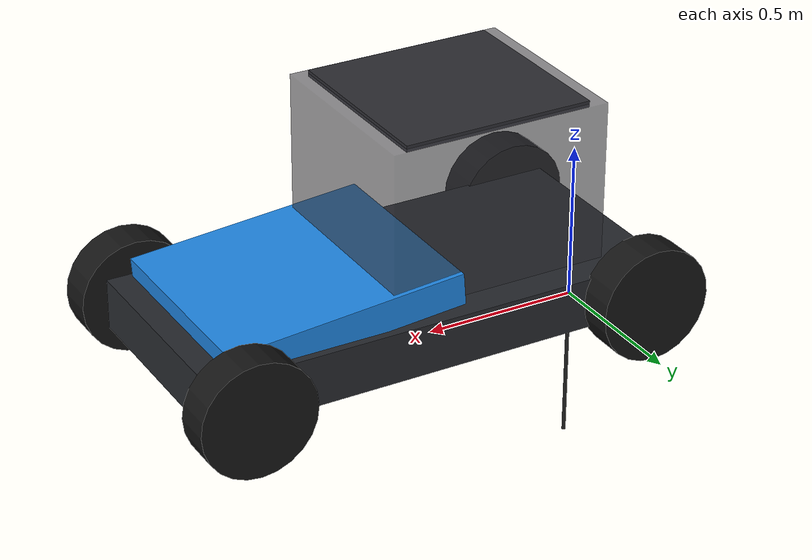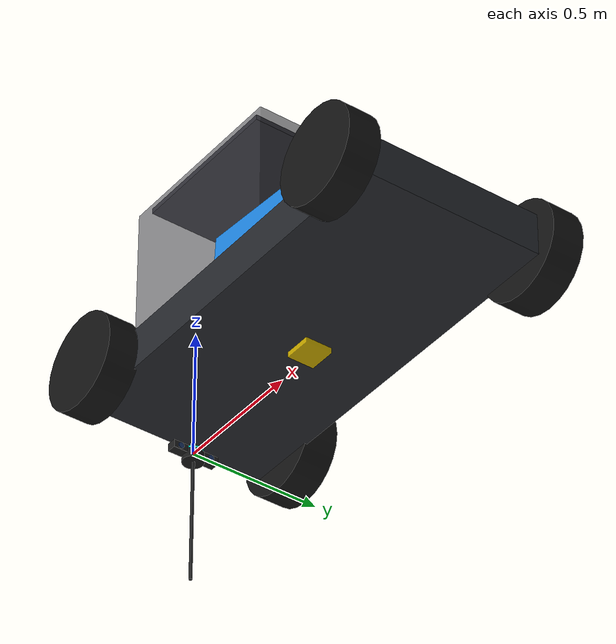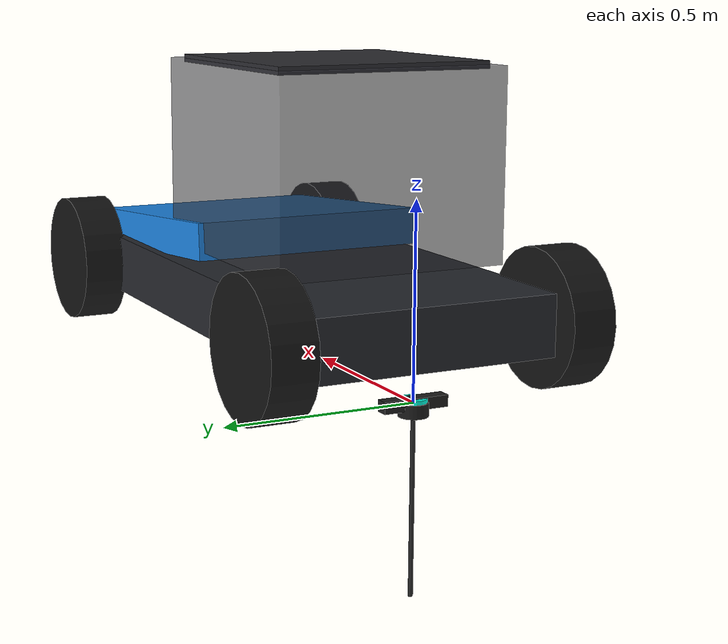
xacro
<?xml version="1.0"?>
<robot name="ev_buggy" xmlns:xacro="http://www.ros.org/wiki/xacro">

  <!-- ROOT COORDINATE FRAME (REP-105)                                       -->
  <!-- base_link: Rear axle center projected down to the ground plane       -->
  <link name="base_link">
    <visual>
      <origin xyz="0.65 0 0.02" rpy="0 0 0"/>
      <geometry>
        <box size="0.1 0.1 0.02"/>
      </geometry>
      <material name="origin_marker">
        <color rgba="1.0 0.84 0.0 0.8"/>
      </material>
    </visual>
  </link>

  <!-- MAIN CHASSIS BODY                                                     -->
  <link name="chassis_link">
    <!-- Main lower hull / belly pan -->
    <visual>
      <origin xyz="0.65 0.0 0.18" rpy="0 0 0"/>
      <geometry>
        <box size="1.50 0.70 0.16"/>
      </geometry>
      <material name="chassis_dark">
        <color rgba="0.15 0.16 0.18 1.0"/>
      </material>
    </visual>

    <!-- Upper body cowl / hood -->
    <visual>
      <origin xyz="0.95 0.0 0.30" rpy="0 0.08 0"/>
      <geometry>
        <box size="0.75 0.65 0.10"/>
      </geometry>
      <material name="body_paint">
        <color rgba="0.12 0.53 0.90 1.0"/>
      </material>
    </visual>

    <!-- Cockpit / Roll cage arch -->
    <visual>
      <origin xyz="0.45 0.0 0.55" rpy="0 0 0"/>
      <geometry>
        <box size="0.70 0.62 0.50"/>
      </geometry>
      <material name="roll_cage">
        <color rgba="0.25 0.25 0.28 0.6"/>
      </material>
    </visual>

    <!-- Roll cage top roof plate (Sensor mounting platform) -->
    <visual>
      <origin xyz="0.45 0.0 0.80" rpy="0 0 0"/>
      <geometry>
        <box size="0.60 0.58 0.02"/>
      </geometry>
      <material name="roof_plate">
        <color rgba="0.18 0.18 0.20 1.0"/>
      </material>
    </visual>
  </link>

  <joint name="chassis_joint" type="fixed">
    <parent link="base_link"/>
    <child link="chassis_link"/>
    <origin xyz="0.0 0.0 0.0" rpy="0 0 0"/>
  </joint>

  <!-- WHEELS (Visual representation of 4-wheel EV platform)                 -->
  <!-- Rear Left Wheel -->
  <link name="rear_left_wheel">
    <visual>
      <origin xyz="0 0 0" rpy="1.570796 0 0"/>
      <geometry>
        <cylinder radius="0.18" length="0.12"/>
      </geometry>
      <material name="tire_rubber">
        <color rgba="0.08 0.08 0.08 1.0"/>
      </material>
    </visual>
  </link>
  <joint name="rear_left_wheel_joint" type="fixed">
    <parent link="base_link"/>
    <child link="rear_left_wheel"/>
    <origin xyz="0.0 0.40 0.18" rpy="0 0 0"/>
  </joint>

  <!-- Rear Right Wheel -->
  <link name="rear_right_wheel">
    <visual>
      <origin xyz="0 0 0" rpy="1.570796 0 0"/>
      <geometry>
        <cylinder radius="0.18" length="0.12"/>
      </geometry>
      <material name="tire_rubber"/>
    </visual>
  </link>
  <joint name="rear_right_wheel_joint" type="fixed">
    <parent link="base_link"/>
    <child link="rear_right_wheel"/>
    <origin xyz="0.0 -0.40 0.18" rpy="0 0 0"/>
  </joint>

  <!-- Front Left Wheel -->
  <link name="front_left_wheel">
    <visual>
      <origin xyz="0 0 0" rpy="1.570796 0 0"/>
      <geometry>
        <cylinder radius="0.18" length="0.12"/>
      </geometry>
      <material name="tire_rubber"/>
    </visual>
  </link>
  <joint name="front_left_wheel_joint" type="fixed">
    <parent link="base_link"/>
    <child link="front_left_wheel"/>
    <origin xyz="1.30 0.40 0.18" rpy="0 0 0"/>
  </joint>

  <!-- Front Right Wheel -->
  <link name="front_right_wheel">
    <visual>
      <origin xyz="0 0 0" rpy="1.570796 0 0"/>
      <geometry>
        <cylinder radius="0.18" length="0.12"/>
      </geometry>
      <material name="tire_rubber"/>
    </visual>
  </link>
  <joint name="front_right_wheel_joint" type="fixed">
    <parent link="base_link"/>
    <child link="front_right_wheel"/>
    <origin xyz="1.30 -0.40 0.18" rpy="0 0 0"/>
  </joint>

  <!-- Include rigid sensor mount transforms and 3D visual models -->
  <xacro:include filename="$(find ev_description)/urdf/sensor_mounts.xacro"/>

</robot>

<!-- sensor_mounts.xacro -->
<robot xmlns:xacro="http://www.ros.org/wiki/xacro">

  <!-- 1. 2D PLANAR LiDAR: Slamtec RPLIDAR S3 (Overhead roll arch plate)     -->
  <link name="laser_frame">
    <visual>
      <!-- LiDAR base puck -->
      <origin xyz="0 0 -0.015" rpy="0 0 0"/>
      <geometry>
        <cylinder radius="0.038" length="0.035"/>
      </geometry>
      <material name="lidar_black">
        <color rgba="0.1 0.1 0.1 1.0"/>
      </material>
    </visual>
    <visual>
      <!-- LiDAR optic window ring -->
      <origin xyz="0 0 0.005" rpy="0 0 0"/>
      <geometry>
        <cylinder radius="0.035" length="0.015"/>
      </geometry>
      <material name="lidar_optical_ring">
        <color rgba="0.0 0.95 0.85 0.9"/>
      </material>
    </visual>
  </link>

  <joint name="laser_joint" type="fixed">
    <parent link="base_link"/>
    <child link="laser_frame"/>
    <origin xyz="0.0 0.0 0.0" rpy="0.0 0.0 0.0"/>
  </joint>

  <!-- 2. INERTIAL MEASUREMENT UNIT: WitMotion WT901 (Center spine / CG)     -->
  <link name="imu_link">
    <visual>
      <!-- Anodized aluminum IMU enclosure -->
      <origin xyz="0 0 0" rpy="0 0 0"/>
      <geometry>
        <box size="0.052 0.038 0.016"/>
      </geometry>
      <material name="imu_blue">
        <color rgba="0.1 0.45 0.95 1.0"/>
      </material>
    </visual>
    <visual>
      <!-- Status LED / Pin header accent -->
      <origin xyz="0.02 0 0.009" rpy="0 0 0"/>
      <geometry>
        <box size="0.008 0.008 0.003"/>
      </geometry>
      <material name="imu_led">
        <color rgba="0.2 1.0 0.2 1.0"/>
      </material>
    </visual>
  </link>

  <joint name="imu_joint" type="fixed">
    <parent link="base_link"/>
    <child link="imu_link"/>
    <origin xyz="0.0 0.0 0.0" rpy="0.0 0.0 0.0"/>
  </joint>

  <!-- 3. GNSS RECEIVER: Holybro Pixhawk M9N (Elevated rear mast)            -->
  <link name="gps_link">
    <visual>
      <!-- Mast pole -->
      <origin xyz="0 0 -0.25" rpy="0 0 0"/>
      <geometry>
        <cylinder radius="0.006" length="0.50"/>
      </geometry>
      <material name="carbon_mast">
        <color rgba="0.15 0.15 0.15 1.0"/>
      </material>
    </visual>
    <visual>
      <!-- GPS dome puck antenna -->
      <origin xyz="0 0 0" rpy="0 0 0"/>
      <geometry>
        <cylinder radius="0.032" length="0.016"/>
      </geometry>
      <material name="gps_white">
        <color rgba="0.95 0.95 0.95 1.0"/>
      </material>
    </visual>
    <visual>
      <!-- Direction arrow mark -->
      <origin xyz="0.012 0 0.009" rpy="0 0 0"/>
      <geometry>
        <box size="0.015 0.005 0.002"/>
      </geometry>
      <material name="gps_red">
        <color rgba="0.9 0.1 0.1 1.0"/>
      </material>
    </visual>
  </link>

  <joint name="gps_joint" type="fixed">
    <parent link="base_link"/>
    <child link="gps_link"/>
    <origin xyz="0.0 0.0 0.0" rpy="0.0 0.0 0.0"/>
  </joint>

  <!-- 4. STEREO DEPTH CAMERA: Stereolabs ZED 2i (Front impact cowl bracket) -->
  <link name="camera_link">
    <visual>
      <!-- Main camera bar body -->
      <origin xyz="0 0 0" rpy="0 0 0"/>
      <geometry>
        <box size="0.035 0.175 0.030"/>
      </geometry>
      <material name="zed_body">
        <color rgba="0.12 0.12 0.12 1.0"/>
      </material>
    </visual>
    <!-- Left optical lens -->
    <visual>
      <origin xyz="0.018 0.06 0" rpy="0 1.570796 0"/>
      <geometry>
        <cylinder radius="0.011" length="0.004"/>
      </geometry>
      <material name="zed_lens">
        <color rgba="0.1 0.2 0.4 1.0"/>
      </material>
    </visual>
    <!-- Right optical lens -->
    <visual>
      <origin xyz="0.018 -0.06 0" rpy="0 1.570796 0"/>
      <geometry>
        <cylinder radius="0.011" length="0.004"/>
      </geometry>
      <material name="zed_lens"/>
    </visual>
  </link>

  <joint name="camera_joint" type="fixed">
    <parent link="base_link"/>
    <child link="camera_link"/>
    <origin xyz="0.0 0.0 0.0" rpy="0.0 0.0 0.0"/>
  </joint>

  <!-- Bridge to ZED wrapper base link -->
  <link name="zed_camera_link"/>

  <joint name="zed_camera_joint" type="fixed">
    <parent link="camera_link"/>
    <child link="zed_camera_link"/>
    <origin xyz="0.00 0.00 0.00" rpy="0.0 0.0 0.0"/>
  </joint>

  <!-- 5. OPTICAL AXIS SUB-LINK (Standard Computer Vision: Z-forward, X-right)-->
  <link name="camera_depth_optical_frame"/>

  <joint name="camera_optical_joint" type="fixed">
    <parent link="camera_link"/>
    <child link="camera_depth_optical_frame"/>
    <origin xyz="0.00 0.00 0.00" rpy="0.0 0.0 0.0"/>
  </joint>

</robot>
